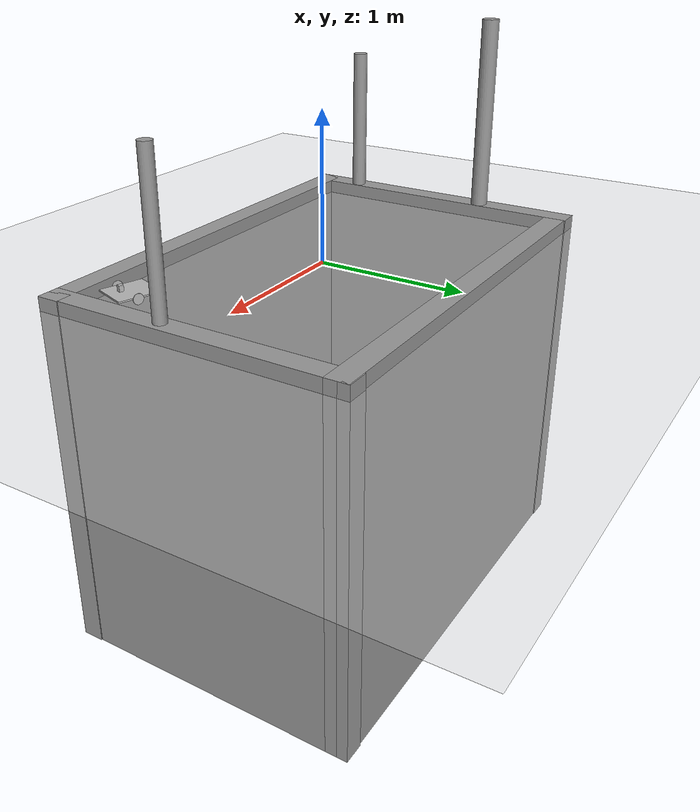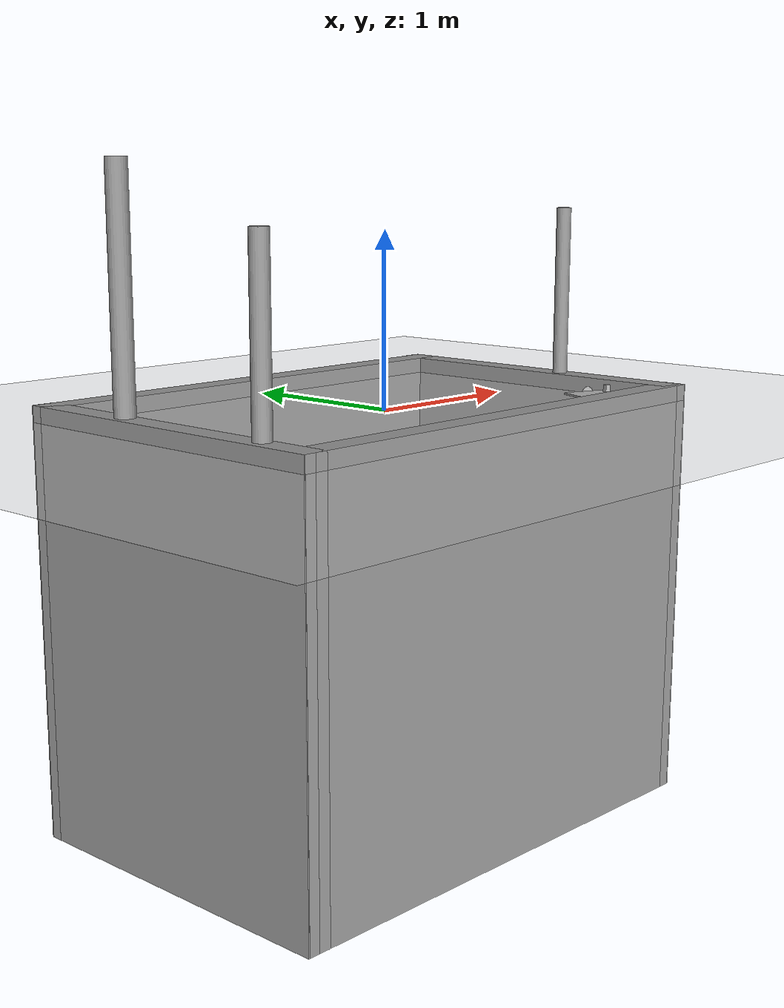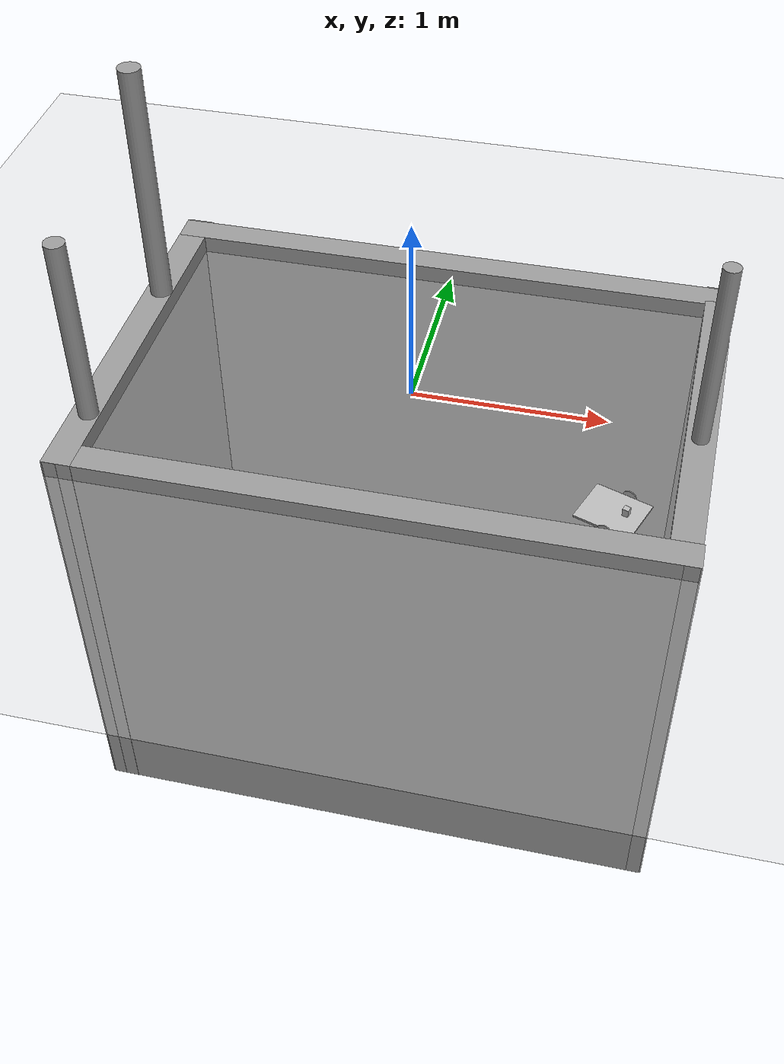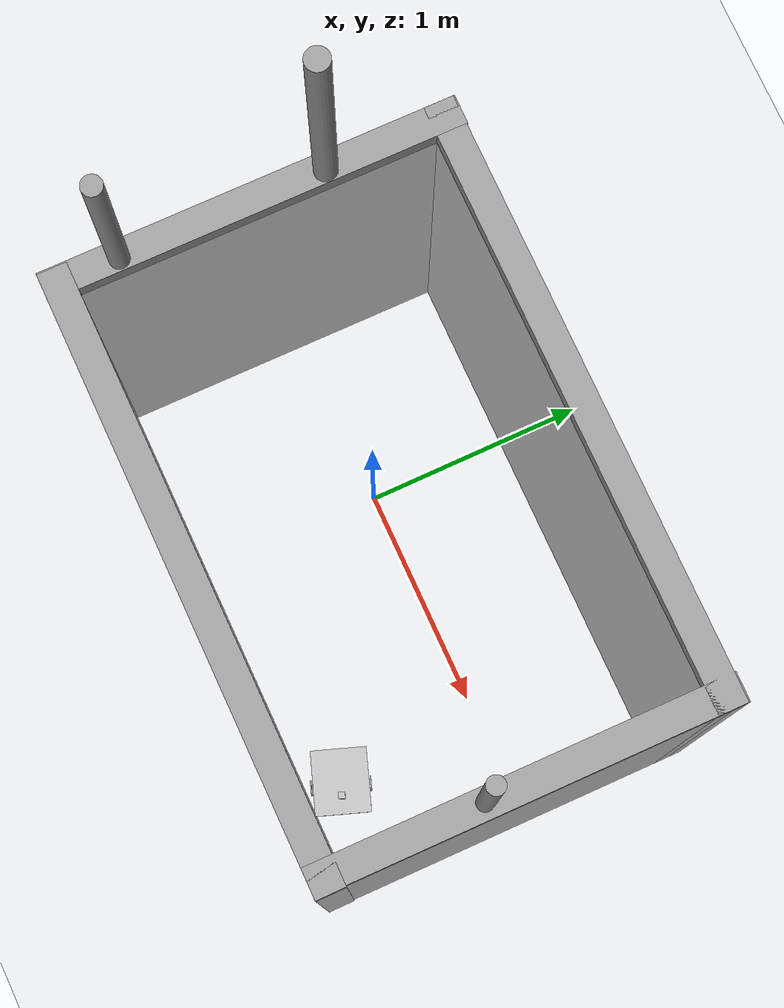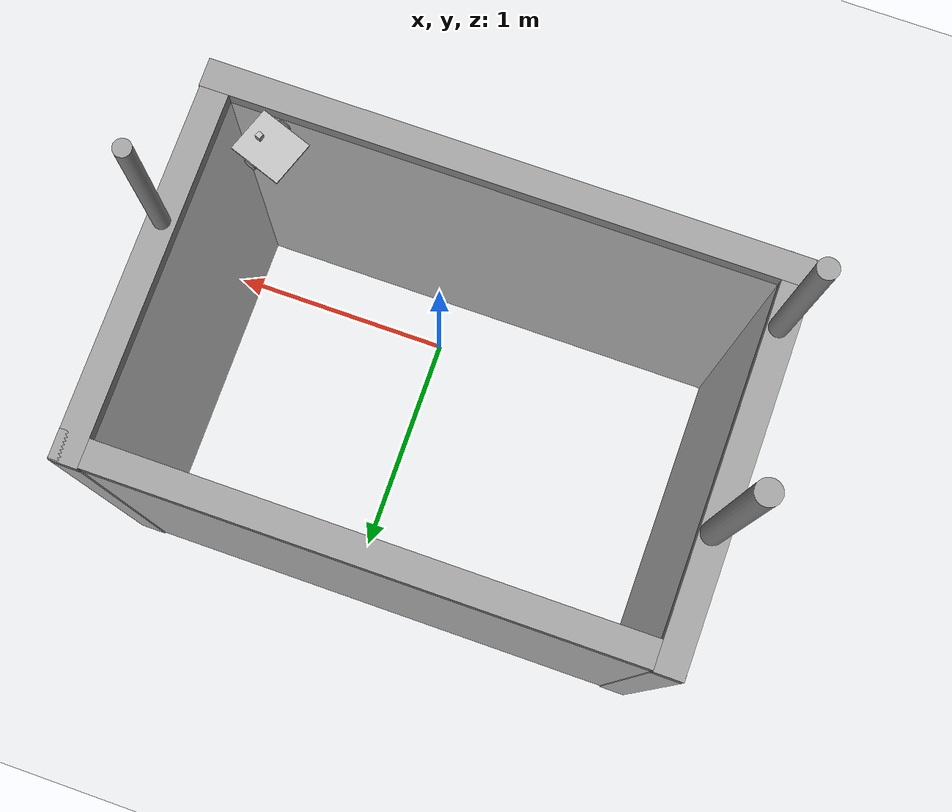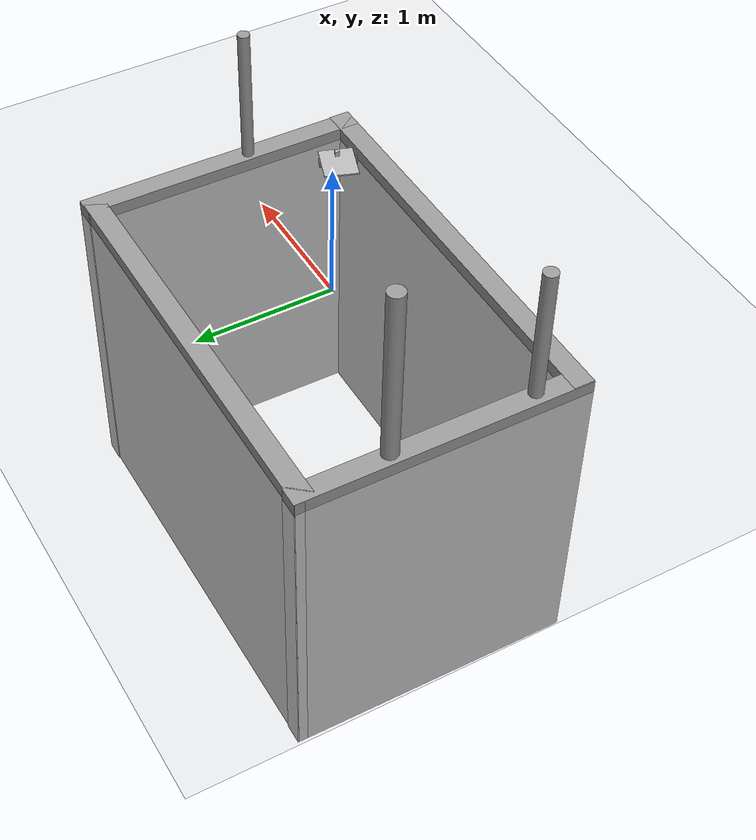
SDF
<sdf version="1.6">
 <world name="default">
  <light name="sun" type="directional">
   <pose>0 0 10 0 -0 0</pose>
   <diffuse>0.8 0.8 0.8 1</diffuse>
   <specular>0.2 0.2 0.2 1</specular>
   <attenuation>
    <range>1000</range>
    <constant>0.9</constant>
    <linear>0.01</linear>
    <quadratic>0.001</quadratic>
   </attenuation>
   <direction>-0.5 0.1 -0.9</direction>
  </light>
  <model name="ground_plane">
   <static>1</static>
   <link name="link">
    <collision name="collision">
     <geometry><plane><normal>0 0 1</normal><size>100 100</size></plane></geometry>
     <surface>
      <contact><collide_bitmask>65535</collide_bitmask></contact>
      <friction><ode><mu>100</mu><mu2>50</mu2></ode></friction>
     </surface>
    </collision>
    <visual name="visual">
     <cast_shadows>0</cast_shadows>
     <geometry><plane><normal>0 0 1</normal><size>100 100</size></plane></geometry>
     <material>
      <script><uri>file://media/materials/scripts/gazebo.material</uri><name>Gazebo/Grey</name></script>
     </material>
    </visual>
   </link>
  </model>
  <gravity>0 0 -9.8</gravity>
  <magnetic_field>6e-06 2.3e-05 -4.2e-05</magnetic_field>
  <atmosphere type="adiabatic"/>
  <physics name="default_physics" default="0" type="ode">
   <max_step_size>0.001</max_step_size>
   <real_time_factor>1</real_time_factor>
   <real_time_update_rate>1000</real_time_update_rate>
  </physics>
  <scene><ambient>0.4 0.4 0.4 1</ambient><background>0.7 0.7 0.7 1</background><shadows>1</shadows></scene>
  <spherical_coordinates>
   <surface_model>EARTH_WGS84</surface_model>
   <latitude_deg>0</latitude_deg>
   <longitude_deg>0</longitude_deg>
   <elevation>0</elevation>
   <heading_deg>0</heading_deg>
  </spherical_coordinates>
  <model name="ubot">
   <link name="base_footprint">
    <inertial>
     <pose>0.000644 0 0.020545 0 -0 0</pose>
     <mass>20.2</mass>
     <inertia>
      <ixx>0.060809</ixx>
      <ixy>0</ixy>
      <ixz>-0.000707921</ixz>
      <iyy>0.131634</iyy>
      <iyz>0</iyz>
      <izz>0.0710466</izz>
     </inertia>
    </inertial>
    <collision name="base_footprint_fixed_joint_lump__base_link_collision">
     <pose>0 0 0.04 0 -0 0</pose>
     <geometry><box><size>0.29 0.25 0.01</size></box></geometry>
    </collision>
    <collision name="base_footprint_fixed_joint_lump__sensor_laser_collision_1">
     <pose>0.065 0 0.075 0 -0 0</pose>
     <geometry><box><size>0.03 0.03 0.04</size></box></geometry>
    </collision>
    <visual name="base_footprint_visual"><geometry><box><size>0.001 0.001 0.001</size></box></geometry></visual>
    <visual name="base_footprint_fixed_joint_lump__base_link_visual_1">
     <pose>0 0 0.04 0 -0 0</pose>
     <geometry><box><size>0.29 0.25 0.01</size></box></geometry>
    </visual>
    <visual name="base_footprint_fixed_joint_lump__sensor_laser_visual_2">
     <pose>0.065 0 0.075 0 -0 0</pose>
     <geometry><box><size>0.03 0.03 0.04</size></box></geometry>
     <material><script><uri>__default__</uri><name>__default__</name></script></material>
    </visual>
    <sensor name="head_hokuyo_sensor" type="ray">
     <visualize>1</visualize>
     <update_rate>20</update_rate>
     <ray>
      <scan>
       <horizontal>
        <samples>1440</samples>
        <resolution>1</resolution>
        <min_angle>-3.14159</min_angle>
        <max_angle>3.14159</max_angle>
       </horizontal>
       <vertical><samples>1</samples><min_angle>0</min_angle><max_angle>0</max_angle></vertical>
      </scan>
      <range><min>0.1</min><max>3</max><resolution>0.01</resolution></range>
      <noise><type>gaussian</type><mean>0</mean><stddev>0.01</stddev></noise>
     </ray>
     <plugin name="gazebo_ros_head_hokuyo_controller" filename="libgazebo_ros_laser.so">
      <topicName>/ubot/laser_scan/scan</topicName>
      <frameName>sensor_laser</frameName>
      <robotNamespace>/</robotNamespace>
     </plugin>
     <pose>0.065 0 0.075 0 -0 0</pose>
    </sensor>
   </link>
   <link name="caster_wheel">
    <pose>-0.052 0 0.0175 0 -0 0</pose>
    <inertial>
     <mass>10</mass>
     <inertia>
      <ixx>0.001225</ixx>
      <ixy>0</ixy>
      <ixz>0</ixz>
      <iyy>0.001225</iyy>
      <iyz>0</iyz>
      <izz>0.001225</izz>
     </inertia>
    </inertial>
    <collision name="caster_wheel_collision">
     <geometry><sphere><radius>0.0175</radius></sphere></geometry>
    </collision>
    <visual name="caster_wheel_visual"><geometry><sphere><radius>0.0175</radius></sphere></geometry></visual>
   </link>
   <joint name="caster_wheel_joint" type="revolute">
    <child>caster_wheel</child>
    <parent>base_footprint</parent>
    <axis>
     <xyz>0 1.5 0</xyz>
     <limit><lower>-1e+16</lower><upper>1e+16</upper></limit>
     <dynamics><spring_reference>0</spring_reference><spring_stiffness>0</spring_stiffness></dynamics>
     <use_parent_model_frame>1</use_parent_model_frame>
    </axis>
   </joint>
   <link name="left_wheel">
    <pose>0.02 0.132 0.035 0 -0 0</pose>
    <inertial>
     <mass>10</mass>
     <inertia>
      <ixx>0.00308333</ixx>
      <ixy>0</ixy>
      <ixz>0</ixz>
      <iyy>0.00308333</iyy>
      <iyz>0</iyz>
      <izz>0.006125</izz>
     </inertia>
    </inertial>
    <collision name="left_wheel_collision">
     <pose>0 0 0 1.5708 -0 0</pose>
     <geometry><cylinder><length>0.005</length><radius>0.035</radius></cylinder></geometry>
    </collision>
    <visual name="left_wheel_visual">
     <pose>0 0 0 1.5708 -0 0</pose>
     <geometry><cylinder><length>0.005</length><radius>0.035</radius></cylinder></geometry>
    </visual>
   </link>
   <joint name="left_wheel_joint" type="revolute">
    <child>left_wheel</child>
    <parent>base_footprint</parent>
    <axis>
     <xyz>0 1 0</xyz>
     <limit><lower>-1e+16</lower><upper>1e+16</upper></limit>
     <dynamics><spring_reference>0</spring_reference><spring_stiffness>0</spring_stiffness></dynamics>
     <use_parent_model_frame>1</use_parent_model_frame>
    </axis>
   </joint>
   <link name="right_wheel">
    <pose>0.02 -0.132 0.035 0 -0 0</pose>
    <inertial>
     <mass>10</mass>
     <inertia>
      <ixx>0.00308333</ixx>
      <ixy>0</ixy>
      <ixz>0</ixz>
      <iyy>0.00308333</iyy>
      <iyz>0</iyz>
      <izz>0.006125</izz>
     </inertia>
    </inertial>
    <collision name="right_wheel_collision">
     <pose>0 0 0 1.5708 -0 0</pose>
     <geometry><cylinder><length>0.005</length><radius>0.035</radius></cylinder></geometry>
    </collision>
    <visual name="right_wheel_visual">
     <pose>0 0 0 1.5708 -0 0</pose>
     <geometry><cylinder><length>0.005</length><radius>0.035</radius></cylinder></geometry>
    </visual>
   </link>
   <joint name="right_wheel_joint" type="revolute">
    <child>right_wheel</child>
    <parent>base_footprint</parent>
    <axis>
     <xyz>0 1 0</xyz>
     <limit><lower>-1e+16</lower><upper>1e+16</upper></limit>
     <dynamics><spring_reference>0</spring_reference><spring_stiffness>0</spring_stiffness></dynamics>
     <use_parent_model_frame>1</use_parent_model_frame>
    </axis>
   </joint>
   <static>0</static>
   <plugin name="differential_drive_controller" filename="libgazebo_ros_diff_drive.so">
    <alwaysOn>false</alwaysOn>
    <legacyMode>false</legacyMode>
    <updateRate>20</updateRate>
    <leftJoint>left_wheel_joint</leftJoint>
    <rightJoint>right_wheel_joint</rightJoint>
    <wheelSeparation>0.15</wheelSeparation>
    <wheelDiameter>0.07</wheelDiameter>
    <torque>20</torque>
    <commandTopic>/ubot/base_controller/cmd_vel</commandTopic>
    <odometryTopic>/ubot/base_controller/odom</odometryTopic>
    <odometryFrame>odom</odometryFrame>
    <robotBaseFrame>base_footprint</robotBaseFrame>
    <robotNamespace>/</robotNamespace>
   </plugin>
   <pose>1.10497 -0.664772 1e-06 -1e-05 -1.8e-05 -0.342599</pose>
  </model>
  <model name="eurobot_arena">
   <pose>-0.022687 0.074669 -2.41252 0 -0 0</pose>
   <link name="Wall_0">
    <collision name="Wall_0_Collision">
     <geometry><box><size>2.11182 0.15 2.5</size></box></geometry>
     <pose>0 0 1.25 0 -0 0</pose>
    </collision>
    <visual name="Wall_0_Visual">
     <pose>0 0 1.25 0 -0 0</pose>
     <geometry><box><size>2.11182 0.15 2.5</size></box></geometry>
     <material>
      <script><uri>file://media/materials/scripts/gazebo.material</uri><name>Gazebo/Grey</name></script>
      <ambient>1 1 1 1</ambient>
     </material>
     <meta><layer>0</layer></meta>
    </visual>
    <pose>-1.48418 0 0 0 0 -1.5775</pose>
   </link>
   <link name="Wall_1">
    <collision name="Wall_1_Collision">
     <geometry><box><size>3.11835 0.15 2.5</size></box></geometry>
     <pose>0 0 1.25 0 -0 0</pose>
    </collision>
    <visual name="Wall_1_Visual">
     <pose>0 0 1.25 0 -0 0</pose>
     <geometry><box><size>3.11835 0.15 2.5</size></box></geometry>
     <material>
      <script><uri>file://media/materials/scripts/gazebo.material</uri><name>Gazebo/Grey</name></script>
      <ambient>1 1 1 1</ambient>
     </material>
     <meta><layer>0</layer></meta>
    </visual>
    <pose>0 -0.980889 0 0 -0 0</pose>
   </link>
   <link name="Wall_2">
    <collision name="Wall_2_Collision">
     <geometry><box><size>2.11182 0.15 2.5</size></box></geometry>
     <pose>0 0 1.25 0 -0 0</pose>
    </collision>
    <visual name="Wall_2_Visual">
     <pose>0 0 1.25 0 -0 0</pose>
     <geometry><box><size>2.11182 0.15 2.5</size></box></geometry>
     <material>
      <script><uri>file://media/materials/scripts/gazebo.material</uri><name>Gazebo/Grey</name></script>
      <ambient>1 1 1 1</ambient>
     </material>
     <meta><layer>0</layer></meta>
    </visual>
    <pose>1.48418 0 0 0 -0 1.56409</pose>
   </link>
   <link name="Wall_3">
    <collision name="Wall_3_Collision">
     <geometry><box><size>3.11835 0.15 2.5</size></box></geometry>
     <pose>0 0 1.25 0 -0 0</pose>
    </collision>
    <visual name="Wall_3_Visual">
     <pose>0 0 1.25 0 -0 0</pose>
     <geometry><box><size>3.11835 0.15 2.5</size></box></geometry>
     <material>
      <script><uri>file://media/materials/scripts/gazebo.material</uri><name>Gazebo/Grey</name></script>
      <ambient>1 1 1 1</ambient>
     </material>
     <meta><layer>0</layer></meta>
    </visual>
    <pose>0.006575 0.974314 0 0 -0 3.14159</pose>
   </link>
   <static>1</static>
  </model>
  <model name="unit_cylinder">
   <pose>-1.49052 0.435542 0.742729 -3.9e-05 -7.6e-05 0.001047</pose>
   <link name="link">
    <inertial>
     <mass>1</mass>
     <inertia><ixx>0.145833</ixx><ixy>0</ixy><ixz>0</ixz><iyy>0.145833</iyy><iyz>0</iyz><izz>0.125</izz></inertia>
    </inertial>
    <collision name="collision">
     <geometry><cylinder><radius>0.0591885</radius><length>1.3105</length></cylinder></geometry>
    </collision>
    <visual name="visual">
     <geometry><cylinder><radius>0.0591885</radius><length>1.3105</length></cylinder></geometry>
     <material>
      <script><name>Gazebo/Grey</name><uri>file://media/materials/scripts/gazebo.material</uri></script>
     </material>
    </visual>
   </link>
  </model>
  <model name="unit_cylinder_0">
   <pose>-1.49387 -0.602776 0.587479 -2e-05 -2.4e-05 -0.028543</pose>
   <link name="link">
    <inertial>
     <mass>1</mass>
     <inertia><ixx>0.145833</ixx><ixy>0</ixy><ixz>0</ixz><iyy>0.145833</iyy><iyz>0</iyz><izz>0.125</izz></inertia>
    </inertial>
    <collision name="collision">
     <geometry><cylinder><radius>0.050954</radius><length>1</length></cylinder></geometry>
    </collision>
    <visual name="visual">
     <geometry><cylinder><radius>0.050954</radius><length>1</length></cylinder></geometry>
     <material>
      <script><name>Gazebo/Grey</name><uri>file://media/materials/scripts/gazebo.material</uri></script>
     </material>
    </visual>
   </link>
  </model>
  <model name="unit_cylinder_1">
   <pose>1.45661 -0.125771 0.587479 -9.8e-05 5e-05 -0.001756</pose>
   <link name="link">
    <inertial>
     <mass>1</mass>
     <inertia><ixx>0.145833</ixx><ixy>0</ixy><ixz>0</ixz><iyy>0.145833</iyy><iyz>0</iyz><izz>0.125</izz></inertia>
    </inertial>
    <collision name="collision">
     <geometry><cylinder><radius>0.043664</radius><length>1</length></cylinder></geometry>
    </collision>
    <visual name="visual">
     <geometry><cylinder><radius>0.043664</radius><length>1</length></cylinder></geometry>
     <material>
      <script><name>Gazebo/Grey</name><uri>file://media/materials/scripts/gazebo.material</uri></script>
     </material>
    </visual>
   </link>
  </model>
 </world>
</sdf>
